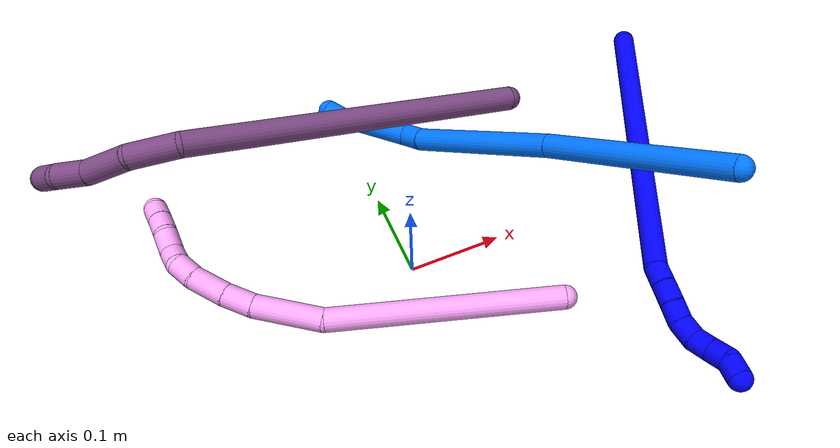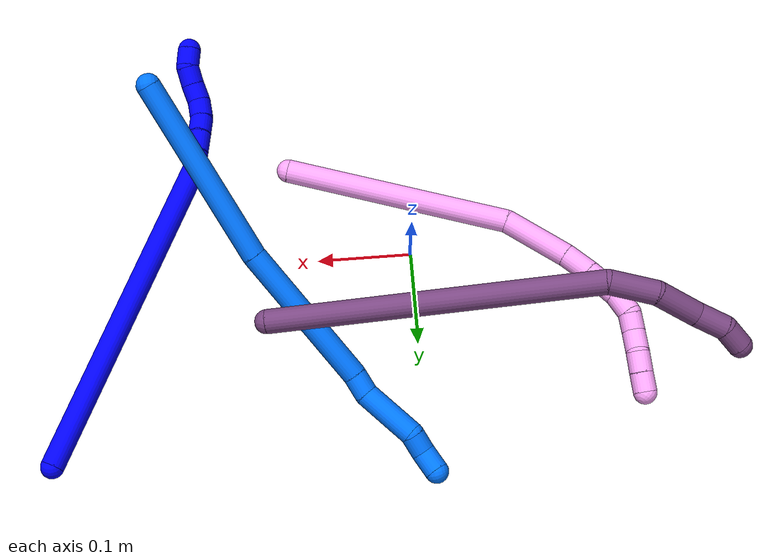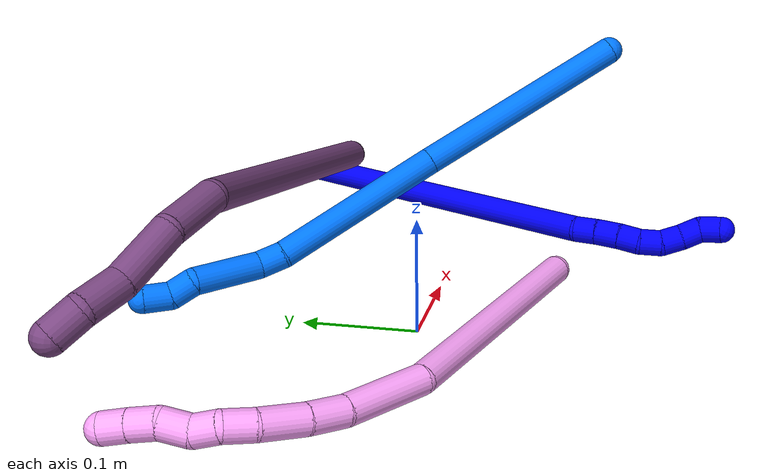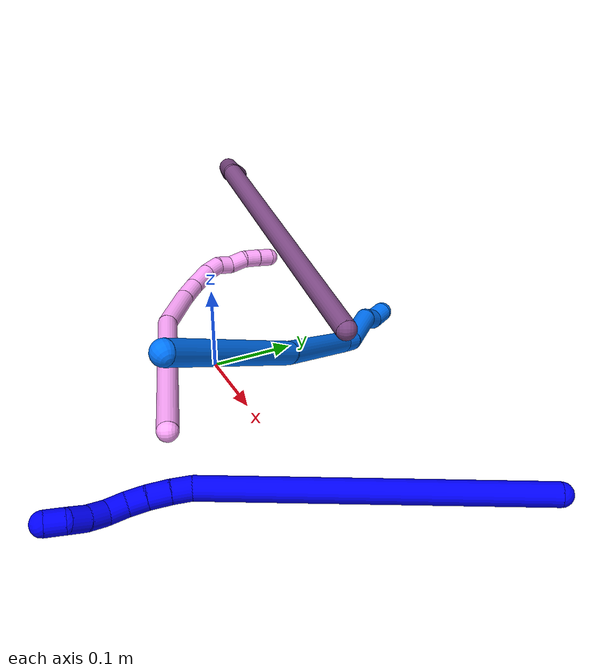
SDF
<sdf version="1.7">
 <world name="default">
  <model name="1">
   <static>0</static>
   <link name="1">
    <collision name="collision-cylinder-e_1_1_4">
     <pose>0.017924 -0.159601 -0.075649 2.01342 0.101137 0.159657</pose>
     <geometry><cylinder><radius>0.0125</radius><length>0.355057</length></cylinder></geometry>
     <surface>
      <friction><ode><mu>1.16</mu><mu2>1.16</mu2><slip1>0</slip1><slip2>0</slip2></ode></friction>
      <contact><ode><kp>1e+06</kp><kd>1</kd><max_vel>0</max_vel><min_depth>0.001</min_depth></ode></contact>
     </surface>
    </collision>
    <visual name="visual-cylinder-e_1_1_4">
     <pose>0.017924 -0.159601 -0.075649 2.01342 0.101137 0.159657</pose>
     <geometry><cylinder><radius>0.0125</radius><length>0.355057</length></cylinder></geometry>
     <material><ambient>0 0 1 1</ambient></material>
    </visual>
    <collision name="collision-cylinder-e_2_4_5">
     <pose>0.034107 -0.328337 -0.156055 2.05093 -0.167442 -0.274892</pose>
     <geometry><cylinder><radius>0.0125</radius><length>0.020891</length></cylinder></geometry>
     <surface>
      <friction><ode><mu>1.16</mu><mu2>1.16</mu2><slip1>0</slip1><slip2>0</slip2></ode></friction>
      <contact><ode><kp>1e+06</kp><kd>1</kd><max_vel>0</max_vel><min_depth>0.001</min_depth></ode></contact>
     </surface>
    </collision>
    <visual name="visual-cylinder-e_2_4_5">
     <pose>0.034107 -0.328337 -0.156055 2.05093 -0.167442 -0.274892</pose>
     <geometry><cylinder><radius>0.0125</radius><length>0.020891</length></cylinder></geometry>
     <material><ambient>0 0 1 1</ambient></material>
    </visual>
    <collision name="collision-cylinder-e_3_5_6">
     <pose>0.030085 -0.347567 -0.165247 1.98472 -0.204048 -0.311065</pose>
     <geometry><cylinder><radius>0.0125</radius><length>0.022521</length></cylinder></geometry>
     <surface>
      <friction><ode><mu>1.16</mu><mu2>1.16</mu2><slip1>0</slip1><slip2>0</slip2></ode></friction>
      <contact><ode><kp>1e+06</kp><kd>1</kd><max_vel>0</max_vel><min_depth>0.001</min_depth></ode></contact>
     </surface>
    </collision>
    <visual name="visual-cylinder-e_3_5_6">
     <pose>0.030085 -0.347567 -0.165247 1.98472 -0.204048 -0.311065</pose>
     <geometry><cylinder><radius>0.0125</radius><length>0.022521</length></cylinder></geometry>
     <material><ambient>0 0 1 1</ambient></material>
    </visual>
    <collision name="collision-cylinder-e_4_6_7">
     <pose>0.025389 -0.366908 -0.172884 1.90421 -0.24194 -0.338239</pose>
     <geometry><cylinder><radius>0.0125</radius><length>0.020154</length></cylinder></geometry>
     <surface>
      <friction><ode><mu>1.16</mu><mu2>1.16</mu2><slip1>0</slip1><slip2>0</slip2></ode></friction>
      <contact><ode><kp>1e+06</kp><kd>1</kd><max_vel>0</max_vel><min_depth>0.001</min_depth></ode></contact>
     </surface>
    </collision>
    <visual name="visual-cylinder-e_4_6_7">
     <pose>0.025389 -0.366908 -0.172884 1.90421 -0.24194 -0.338239</pose>
     <geometry><cylinder><radius>0.0125</radius><length>0.020154</length></cylinder></geometry>
     <material><ambient>0 0 1 1</ambient></material>
    </visual>
    <collision name="collision-cylinder-e_5_7_8">
     <pose>0.018314 -0.384344 -0.18056 2.07064 -0.46309 -0.75652</pose>
     <geometry><cylinder><radius>0.0125</radius><length>0.020864</length></cylinder></geometry>
     <surface>
      <friction><ode><mu>1.16</mu><mu2>1.16</mu2><slip1>0</slip1><slip2>0</slip2></ode></friction>
      <contact><ode><kp>1e+06</kp><kd>1</kd><max_vel>0</max_vel><min_depth>0.001</min_depth></ode></contact>
     </surface>
    </collision>
    <visual name="visual-cylinder-e_5_7_8">
     <pose>0.018314 -0.384344 -0.18056 2.07064 -0.46309 -0.75652</pose>
     <geometry><cylinder><radius>0.0125</radius><length>0.020864</length></cylinder></geometry>
     <material><ambient>0 0 1 1</ambient></material>
    </visual>
    <collision name="collision-cylinder-e_6_8_9">
     <pose>0.008273 -0.397789 -0.191763 2.47877 -0.562344 -1.39656</pose>
     <geometry><cylinder><radius>0.0125</radius><length>0.020184</length></cylinder></geometry>
     <surface>
      <friction><ode><mu>1.16</mu><mu2>1.16</mu2><slip1>0</slip1><slip2>0</slip2></ode></friction>
      <contact><ode><kp>1e+06</kp><kd>1</kd><max_vel>0</max_vel><min_depth>0.001</min_depth></ode></contact>
     </surface>
    </collision>
    <visual name="visual-cylinder-e_6_8_9">
     <pose>0.008273 -0.397789 -0.191763 2.47877 -0.562344 -1.39656</pose>
     <geometry><cylinder><radius>0.0125</radius><length>0.020184</length></cylinder></geometry>
     <material><ambient>0 0 1 1</ambient></material>
    </visual>
    <collision name="collision-cylinder-e_7_9_10">
     <pose>-0.001484 -0.407873 -0.206247 2.58448 -0.446725 -1.34247</pose>
     <geometry><cylinder><radius>0.0125</radius><length>0.020259</length></cylinder></geometry>
     <surface>
      <friction><ode><mu>1.16</mu><mu2>1.16</mu2><slip1>0</slip1><slip2>0</slip2></ode></friction>
      <contact><ode><kp>1e+06</kp><kd>1</kd><max_vel>0</max_vel><min_depth>0.001</min_depth></ode></contact>
     </surface>
    </collision>
    <visual name="visual-cylinder-e_7_9_10">
     <pose>-0.001484 -0.407873 -0.206247 2.58448 -0.446725 -1.34247</pose>
     <geometry><cylinder><radius>0.0125</radius><length>0.020259</length></cylinder></geometry>
     <material><ambient>0 0 1 1</ambient></material>
    </visual>
    <collision name="collision-cylinder-e_8_10_2">
     <pose>-0.007746 -0.420894 -0.219484 2.16067 -0.189071 -0.351475</pose>
     <geometry><cylinder><radius>0.0125</radius><length>0.020069</length></cylinder></geometry>
     <surface>
      <friction><ode><mu>1.16</mu><mu2>1.16</mu2><slip1>0</slip1><slip2>0</slip2></ode></friction>
      <contact><ode><kp>1e+06</kp><kd>1</kd><max_vel>0</max_vel><min_depth>0.001</min_depth></ode></contact>
     </surface>
    </collision>
    <visual name="visual-cylinder-e_8_10_2">
     <pose>-0.007746 -0.420894 -0.219484 2.16067 -0.189071 -0.351475</pose>
     <geometry><cylinder><radius>0.0125</radius><length>0.020069</length></cylinder></geometry>
     <material><ambient>0 0 1 1</ambient></material>
    </visual>
    <collision name="collision-sphere-2">
     <pose>-0.009632 -0.429084 -0.224966 0 -0 0</pose>
     <geometry><sphere><radius>0.0125</radius></sphere></geometry>
     <surface>
      <friction><ode><mu>1.16</mu><mu2>1.16</mu2><slip1>0</slip1><slip2>0</slip2></ode></friction>
      <contact><ode><kp>1e+06</kp><kd>1</kd><max_vel>0</max_vel><min_depth>0.001</min_depth></ode></contact>
     </surface>
    </collision>
    <visual name="visual-sphere-2">
     <pose>-0.009632 -0.429084 -0.224966 0 -0 0</pose>
     <geometry><sphere><radius>0.0125</radius></sphere></geometry>
     <material><ambient>0 0 1 1</ambient></material>
    </visual>
    <collision name="collision-sphere-10">
     <pose>-0.00586 -0.412704 -0.214001 0 -0 0</pose>
     <geometry><sphere><radius>0.0125</radius></sphere></geometry>
     <surface>
      <friction><ode><mu>1.16</mu><mu2>1.16</mu2><slip1>0</slip1><slip2>0</slip2></ode></friction>
      <contact><ode><kp>1e+06</kp><kd>1</kd><max_vel>0</max_vel><min_depth>0.001</min_depth></ode></contact>
     </surface>
    </collision>
    <visual name="visual-sphere-10">
     <pose>-0.00586 -0.412704 -0.214001 0 -0 0</pose>
     <geometry><sphere><radius>0.0125</radius></sphere></geometry>
     <material><ambient>0 0 1 1</ambient></material>
    </visual>
    <collision name="collision-sphere-9">
     <pose>0.002893 -0.403043 -0.198493 0 -0 0</pose>
     <geometry><sphere><radius>0.0125</radius></sphere></geometry>
     <surface>
      <friction><ode><mu>1.16</mu><mu2>1.16</mu2><slip1>0</slip1><slip2>0</slip2></ode></friction>
      <contact><ode><kp>1e+06</kp><kd>1</kd><max_vel>0</max_vel><min_depth>0.001</min_depth></ode></contact>
     </surface>
    </collision>
    <visual name="visual-sphere-9">
     <pose>0.002893 -0.403043 -0.198493 0 -0 0</pose>
     <geometry><sphere><radius>0.0125</radius></sphere></geometry>
     <material><ambient>0 0 1 1</ambient></material>
    </visual>
    <collision name="collision-sphere-4">
     <pose>0.035848 -0.319202 -0.151297 0 -0 0</pose>
     <geometry><sphere><radius>0.0125</radius></sphere></geometry>
     <surface>
      <friction><ode><mu>1.16</mu><mu2>1.16</mu2><slip1>0</slip1><slip2>0</slip2></ode></friction>
      <contact><ode><kp>1e+06</kp><kd>1</kd><max_vel>0</max_vel><min_depth>0.001</min_depth></ode></contact>
     </surface>
    </collision>
    <visual name="visual-sphere-4">
     <pose>0.035848 -0.319202 -0.151297 0 -0 0</pose>
     <geometry><sphere><radius>0.0125</radius></sphere></geometry>
     <material><ambient>0 0 1 1</ambient></material>
    </visual>
    <collision name="collision-sphere-1">
     <geometry><sphere><radius>0.0125</radius></sphere></geometry>
     <surface>
      <friction><ode><mu>1.16</mu><mu2>1.16</mu2><slip1>0</slip1><slip2>0</slip2></ode></friction>
      <contact><ode><kp>1e+06</kp><kd>1</kd><max_vel>0</max_vel><min_depth>0.001</min_depth></ode></contact>
     </surface>
    </collision>
    <visual name="visual-sphere-1">
     <geometry><sphere><radius>0.0125</radius></sphere></geometry>
     <material><ambient>0 0 1 1</ambient></material>
    </visual>
    <collision name="collision-sphere-8">
     <pose>0.013654 -0.392536 -0.185033 0 -0 0</pose>
     <geometry><sphere><radius>0.0125</radius></sphere></geometry>
     <surface>
      <friction><ode><mu>1.16</mu><mu2>1.16</mu2><slip1>0</slip1><slip2>0</slip2></ode></friction>
      <contact><ode><kp>1e+06</kp><kd>1</kd><max_vel>0</max_vel><min_depth>0.001</min_depth></ode></contact>
     </surface>
    </collision>
    <visual name="visual-sphere-8">
     <pose>0.013654 -0.392536 -0.185033 0 -0 0</pose>
     <geometry><sphere><radius>0.0125</radius></sphere></geometry>
     <material><ambient>0 0 1 1</ambient></material>
    </visual>
    <collision name="collision-sphere-5">
     <pose>0.032367 -0.337472 -0.160812 0 -0 0</pose>
     <geometry><sphere><radius>0.0125</radius></sphere></geometry>
     <surface>
      <friction><ode><mu>1.16</mu><mu2>1.16</mu2><slip1>0</slip1><slip2>0</slip2></ode></friction>
      <contact><ode><kp>1e+06</kp><kd>1</kd><max_vel>0</max_vel><min_depth>0.001</min_depth></ode></contact>
     </surface>
    </collision>
    <visual name="visual-sphere-5">
     <pose>0.032367 -0.337472 -0.160812 0 -0 0</pose>
     <geometry><sphere><radius>0.0125</radius></sphere></geometry>
     <material><ambient>0 0 1 1</ambient></material>
    </visual>
    <collision name="collision-sphere-6">
     <pose>0.027803 -0.357663 -0.169682 0 -0 0</pose>
     <geometry><sphere><radius>0.0125</radius></sphere></geometry>
     <surface>
      <friction><ode><mu>1.16</mu><mu2>1.16</mu2><slip1>0</slip1><slip2>0</slip2></ode></friction>
      <contact><ode><kp>1e+06</kp><kd>1</kd><max_vel>0</max_vel><min_depth>0.001</min_depth></ode></contact>
     </surface>
    </collision>
    <visual name="visual-sphere-6">
     <pose>0.027803 -0.357663 -0.169682 0 -0 0</pose>
     <geometry><sphere><radius>0.0125</radius></sphere></geometry>
     <material><ambient>0 0 1 1</ambient></material>
    </visual>
    <collision name="collision-sphere-7">
     <pose>0.022974 -0.376152 -0.176086 0 -0 0</pose>
     <geometry><sphere><radius>0.0125</radius></sphere></geometry>
     <surface>
      <friction><ode><mu>1.16</mu><mu2>1.16</mu2><slip1>0</slip1><slip2>0</slip2></ode></friction>
      <contact><ode><kp>1e+06</kp><kd>1</kd><max_vel>0</max_vel><min_depth>0.001</min_depth></ode></contact>
     </surface>
    </collision>
    <visual name="visual-sphere-7">
     <pose>0.022974 -0.376152 -0.176086 0 -0 0</pose>
     <geometry><sphere><radius>0.0125</radius></sphere></geometry>
     <material><ambient>0 0 1 1</ambient></material>
    </visual>
    <inertial>
     <pose>0.017259 -0.223014 -0.107093 0 -0 0</pose>
     <mass>0.5</mass>
     <inertia>
      <ixx>0.004271</ixx>
      <ixy>0</ixy>
      <ixz>0</ixz>
      <iyy>-0.000978</iyy>
      <iyz>0</iyz>
      <izz>0.002982</izz>
     </inertia>
    </inertial>
   </link>
   <pose>0.388076 0.206232 0.011498 2.69488 -0.195207 2.77231</pose>
  </model>
  <model name="4">
   <static>0</static>
   <link name="4">
    <collision name="collision-cylinder-e_1_1_4">
     <pose>-0.091717 0.075022 -0.028552 -1.93445 -0.851851 1.16412</pose>
     <geometry><cylinder><radius>0.0125</radius><length>0.243766</length></cylinder></geometry>
     <surface>
      <friction><ode><mu>1.16</mu><mu2>1.16</mu2><slip1>0</slip1><slip2>0</slip2></ode></friction>
      <contact><ode><kp>1e+06</kp><kd>1</kd><max_vel>0</max_vel><min_depth>0.001</min_depth></ode></contact>
     </surface>
    </collision>
    <visual name="visual-cylinder-e_1_1_4">
     <pose>-0.091717 0.075022 -0.028552 -1.93445 -0.851851 1.16412</pose>
     <geometry><cylinder><radius>0.0125</radius><length>0.243766</length></cylinder></geometry>
     <material><ambient>1 0.65098 0.996078 1</ambient></material>
    </visual>
    <collision name="collision-cylinder-e_2_4_5">
     <pose>-0.211495 0.174098 -0.053996 -1.44233 -0.858024 0.764697</pose>
     <geometry><cylinder><radius>0.0125</radius><length>0.07418</length></cylinder></geometry>
     <surface>
      <friction><ode><mu>1.16</mu><mu2>1.16</mu2><slip1>0</slip1><slip2>0</slip2></ode></friction>
      <contact><ode><kp>1e+06</kp><kd>1</kd><max_vel>0</max_vel><min_depth>0.001</min_depth></ode></contact>
     </surface>
    </collision>
    <visual name="visual-cylinder-e_2_4_5">
     <pose>-0.211495 0.174098 -0.053996 -1.44233 -0.858024 0.764697</pose>
     <geometry><cylinder><radius>0.0125</radius><length>0.07418</length></cylinder></geometry>
     <material><ambient>1 0.65098 0.996078 1</ambient></material>
    </visual>
    <collision name="collision-cylinder-e_3_5_6">
     <pose>-0.252053 0.207229 -0.047215 -1.18619 -0.906194 0.634214</pose>
     <geometry><cylinder><radius>0.0125</radius><length>0.031753</length></cylinder></geometry>
     <surface>
      <friction><ode><mu>1.16</mu><mu2>1.16</mu2><slip1>0</slip1><slip2>0</slip2></ode></friction>
      <contact><ode><kp>1e+06</kp><kd>1</kd><max_vel>0</max_vel><min_depth>0.001</min_depth></ode></contact>
     </surface>
    </collision>
    <visual name="visual-cylinder-e_3_5_6">
     <pose>-0.252053 0.207229 -0.047215 -1.18619 -0.906194 0.634214</pose>
     <geometry><cylinder><radius>0.0125</radius><length>0.031753</length></cylinder></geometry>
     <material><ambient>1 0.65098 0.996078 1</ambient></material>
    </visual>
    <collision name="collision-cylinder-e_4_6_7">
     <pose>-0.279636 0.226404 -0.037139 -1.00575 -0.900569 0.519761</pose>
     <geometry><cylinder><radius>0.0125</radius><length>0.0385</length></cylinder></geometry>
     <surface>
      <friction><ode><mu>1.16</mu><mu2>1.16</mu2><slip1>0</slip1><slip2>0</slip2></ode></friction>
      <contact><ode><kp>1e+06</kp><kd>1</kd><max_vel>0</max_vel><min_depth>0.001</min_depth></ode></contact>
     </surface>
    </collision>
    <visual name="visual-cylinder-e_4_6_7">
     <pose>-0.279636 0.226404 -0.037139 -1.00575 -0.900569 0.519761</pose>
     <geometry><cylinder><radius>0.0125</radius><length>0.0385</length></cylinder></geometry>
     <material><ambient>1 0.65098 0.996078 1</ambient></material>
    </visual>
    <collision name="collision-cylinder-e_5_7_8">
     <pose>-0.303027 0.242753 -0.024388 -0.777605 -0.750311 0.319894</pose>
     <geometry><cylinder><radius>0.0125</radius><length>0.024357</length></cylinder></geometry>
     <surface>
      <friction><ode><mu>1.16</mu><mu2>1.16</mu2><slip1>0</slip1><slip2>0</slip2></ode></friction>
      <contact><ode><kp>1e+06</kp><kd>1</kd><max_vel>0</max_vel><min_depth>0.001</min_depth></ode></contact>
     </surface>
    </collision>
    <visual name="visual-cylinder-e_5_7_8">
     <pose>-0.303027 0.242753 -0.024388 -0.777605 -0.750311 0.319894</pose>
     <geometry><cylinder><radius>0.0125</radius><length>0.024357</length></cylinder></geometry>
     <material><ambient>1 0.65098 0.996078 1</ambient></material>
    </visual>
    <collision name="collision-cylinder-e_6_8_9">
     <pose>-0.314064 0.255449 -0.010525 -0.708946 -0.2694 0.10023</pose>
     <geometry><cylinder><radius>0.0125</radius><length>0.020541</length></cylinder></geometry>
     <surface>
      <friction><ode><mu>1.16</mu><mu2>1.16</mu2><slip1>0</slip1><slip2>0</slip2></ode></friction>
      <contact><ode><kp>1e+06</kp><kd>1</kd><max_vel>0</max_vel><min_depth>0.001</min_depth></ode></contact>
     </surface>
    </collision>
    <visual name="visual-cylinder-e_6_8_9">
     <pose>-0.314064 0.255449 -0.010525 -0.708946 -0.2694 0.10023</pose>
     <geometry><cylinder><radius>0.0125</radius><length>0.020541</length></cylinder></geometry>
     <material><ambient>1 0.65098 0.996078 1</ambient></material>
    </visual>
    <collision name="collision-cylinder-e_7_9_10">
     <pose>-0.322522 0.265164 0.006978 -0.316373 -0.498715 0.081201</pose>
     <geometry><cylinder><radius>0.0125</radius><length>0.023936</length></cylinder></geometry>
     <surface>
      <friction><ode><mu>1.16</mu><mu2>1.16</mu2><slip1>0</slip1><slip2>0</slip2></ode></friction>
      <contact><ode><kp>1e+06</kp><kd>1</kd><max_vel>0</max_vel><min_depth>0.001</min_depth></ode></contact>
     </surface>
    </collision>
    <visual name="visual-cylinder-e_7_9_10">
     <pose>-0.322522 0.265164 0.006978 -0.316373 -0.498715 0.081201</pose>
     <geometry><cylinder><radius>0.0125</radius><length>0.023936</length></cylinder></geometry>
     <material><ambient>1 0.65098 0.996078 1</ambient></material>
    </visual>
    <collision name="collision-cylinder-e_8_10_11">
     <pose>-0.331457 0.274528 0.025655 -0.611657 -0.293752 0.093352</pose>
     <geometry><cylinder><radius>0.0125</radius><length>0.022175</length></cylinder></geometry>
     <surface>
      <friction><ode><mu>1.16</mu><mu2>1.16</mu2><slip1>0</slip1><slip2>0</slip2></ode></friction>
      <contact><ode><kp>1e+06</kp><kd>1</kd><max_vel>0</max_vel><min_depth>0.001</min_depth></ode></contact>
     </surface>
    </collision>
    <visual name="visual-cylinder-e_8_10_11">
     <pose>-0.331457 0.274528 0.025655 -0.611657 -0.293752 0.093352</pose>
     <geometry><cylinder><radius>0.0125</radius><length>0.022175</length></cylinder></geometry>
     <material><ambient>1 0.65098 0.996078 1</ambient></material>
    </visual>
    <collision name="collision-cylinder-e_9_11_2">
     <pose>-0.337589 0.286704 0.042252 -0.655586 -0.284915 0.097472</pose>
     <geometry><cylinder><radius>0.0125</radius><length>0.02079</length></cylinder></geometry>
     <surface>
      <friction><ode><mu>1.16</mu><mu2>1.16</mu2><slip1>0</slip1><slip2>0</slip2></ode></friction>
      <contact><ode><kp>1e+06</kp><kd>1</kd><max_vel>0</max_vel><min_depth>0.001</min_depth></ode></contact>
     </surface>
    </collision>
    <visual name="visual-cylinder-e_9_11_2">
     <pose>-0.337589 0.286704 0.042252 -0.655586 -0.284915 0.097472</pose>
     <geometry><cylinder><radius>0.0125</radius><length>0.02079</length></cylinder></geometry>
     <material><ambient>1 0.65098 0.996078 1</ambient></material>
    </visual>
    <collision name="collision-sphere-2">
     <pose>-0.340511 0.292785 0.05016 0 -0 0</pose>
     <geometry><sphere><radius>0.0125</radius></sphere></geometry>
     <surface>
      <friction><ode><mu>1.16</mu><mu2>1.16</mu2><slip1>0</slip1><slip2>0</slip2></ode></friction>
      <contact><ode><kp>1e+06</kp><kd>1</kd><max_vel>0</max_vel><min_depth>0.001</min_depth></ode></contact>
     </surface>
    </collision>
    <visual name="visual-sphere-2">
     <pose>-0.340511 0.292785 0.05016 0 -0 0</pose>
     <geometry><sphere><radius>0.0125</radius></sphere></geometry>
     <material><ambient>1 0.65098 0.996078 1</ambient></material>
    </visual>
    <collision name="collision-sphere-11">
     <pose>-0.334667 0.280622 0.034344 0 -0 0</pose>
     <geometry><sphere><radius>0.0125</radius></sphere></geometry>
     <surface>
      <friction><ode><mu>1.16</mu><mu2>1.16</mu2><slip1>0</slip1><slip2>0</slip2></ode></friction>
      <contact><ode><kp>1e+06</kp><kd>1</kd><max_vel>0</max_vel><min_depth>0.001</min_depth></ode></contact>
     </surface>
    </collision>
    <visual name="visual-sphere-11">
     <pose>-0.334667 0.280622 0.034344 0 -0 0</pose>
     <geometry><sphere><radius>0.0125</radius></sphere></geometry>
     <material><ambient>1 0.65098 0.996078 1</ambient></material>
    </visual>
    <collision name="collision-sphere-10">
     <pose>-0.328247 0.268434 0.016967 0 -0 0</pose>
     <geometry><sphere><radius>0.0125</radius></sphere></geometry>
     <surface>
      <friction><ode><mu>1.16</mu><mu2>1.16</mu2><slip1>0</slip1><slip2>0</slip2></ode></friction>
      <contact><ode><kp>1e+06</kp><kd>1</kd><max_vel>0</max_vel><min_depth>0.001</min_depth></ode></contact>
     </surface>
    </collision>
    <visual name="visual-sphere-10">
     <pose>-0.328247 0.268434 0.016967 0 -0 0</pose>
     <geometry><sphere><radius>0.0125</radius></sphere></geometry>
     <material><ambient>1 0.65098 0.996078 1</ambient></material>
    </visual>
    <collision name="collision-sphere-9">
     <pose>-0.316798 0.261894 -0.003011 0 -0 0</pose>
     <geometry><sphere><radius>0.0125</radius></sphere></geometry>
     <surface>
      <friction><ode><mu>1.16</mu><mu2>1.16</mu2><slip1>0</slip1><slip2>0</slip2></ode></friction>
      <contact><ode><kp>1e+06</kp><kd>1</kd><max_vel>0</max_vel><min_depth>0.001</min_depth></ode></contact>
     </surface>
    </collision>
    <visual name="visual-sphere-9">
     <pose>-0.316798 0.261894 -0.003011 0 -0 0</pose>
     <geometry><sphere><radius>0.0125</radius></sphere></geometry>
     <material><ambient>1 0.65098 0.996078 1</ambient></material>
    </visual>
    <collision name="collision-sphere-4">
     <pose>-0.183434 0.150043 -0.057104 0 -0 0</pose>
     <geometry><sphere><radius>0.0125</radius></sphere></geometry>
     <surface>
      <friction><ode><mu>1.16</mu><mu2>1.16</mu2><slip1>0</slip1><slip2>0</slip2></ode></friction>
      <contact><ode><kp>1e+06</kp><kd>1</kd><max_vel>0</max_vel><min_depth>0.001</min_depth></ode></contact>
     </surface>
    </collision>
    <visual name="visual-sphere-4">
     <pose>-0.183434 0.150043 -0.057104 0 -0 0</pose>
     <geometry><sphere><radius>0.0125</radius></sphere></geometry>
     <material><ambient>1 0.65098 0.996078 1</ambient></material>
    </visual>
    <collision name="collision-sphere-1">
     <geometry><sphere><radius>0.0125</radius></sphere></geometry>
     <surface>
      <friction><ode><mu>1.16</mu><mu2>1.16</mu2><slip1>0</slip1><slip2>0</slip2></ode></friction>
      <contact><ode><kp>1e+06</kp><kd>1</kd><max_vel>0</max_vel><min_depth>0.001</min_depth></ode></contact>
     </surface>
    </collision>
    <visual name="visual-sphere-1">
     <geometry><sphere><radius>0.0125</radius></sphere></geometry>
     <material><ambient>1 0.65098 0.996078 1</ambient></material>
    </visual>
    <collision name="collision-sphere-8">
     <pose>-0.311331 0.249003 -0.01804 0 -0 0</pose>
     <geometry><sphere><radius>0.0125</radius></sphere></geometry>
     <surface>
      <friction><ode><mu>1.16</mu><mu2>1.16</mu2><slip1>0</slip1><slip2>0</slip2></ode></friction>
      <contact><ode><kp>1e+06</kp><kd>1</kd><max_vel>0</max_vel><min_depth>0.001</min_depth></ode></contact>
     </surface>
    </collision>
    <visual name="visual-sphere-8">
     <pose>-0.311331 0.249003 -0.01804 0 -0 0</pose>
     <geometry><sphere><radius>0.0125</radius></sphere></geometry>
     <material><ambient>1 0.65098 0.996078 1</ambient></material>
    </visual>
    <collision name="collision-sphere-5">
     <pose>-0.239555 0.198152 -0.050889 0 -0 0</pose>
     <geometry><sphere><radius>0.0125</radius></sphere></geometry>
     <surface>
      <friction><ode><mu>1.16</mu><mu2>1.16</mu2><slip1>0</slip1><slip2>0</slip2></ode></friction>
      <contact><ode><kp>1e+06</kp><kd>1</kd><max_vel>0</max_vel><min_depth>0.001</min_depth></ode></contact>
     </surface>
    </collision>
    <visual name="visual-sphere-5">
     <pose>-0.239555 0.198152 -0.050889 0 -0 0</pose>
     <geometry><sphere><radius>0.0125</radius></sphere></geometry>
     <material><ambient>1 0.65098 0.996078 1</ambient></material>
    </visual>
    <collision name="collision-sphere-6">
     <pose>-0.26455 0.216306 -0.043542 0 -0 0</pose>
     <geometry><sphere><radius>0.0125</radius></sphere></geometry>
     <surface>
      <friction><ode><mu>1.16</mu><mu2>1.16</mu2><slip1>0</slip1><slip2>0</slip2></ode></friction>
      <contact><ode><kp>1e+06</kp><kd>1</kd><max_vel>0</max_vel><min_depth>0.001</min_depth></ode></contact>
     </surface>
    </collision>
    <visual name="visual-sphere-6">
     <pose>-0.26455 0.216306 -0.043542 0 -0 0</pose>
     <geometry><sphere><radius>0.0125</radius></sphere></geometry>
     <material><ambient>1 0.65098 0.996078 1</ambient></material>
    </visual>
    <collision name="collision-sphere-7">
     <pose>-0.294722 0.236503 -0.030736 0 -0 0</pose>
     <geometry><sphere><radius>0.0125</radius></sphere></geometry>
     <surface>
      <friction><ode><mu>1.16</mu><mu2>1.16</mu2><slip1>0</slip1><slip2>0</slip2></ode></friction>
      <contact><ode><kp>1e+06</kp><kd>1</kd><max_vel>0</max_vel><min_depth>0.001</min_depth></ode></contact>
     </surface>
    </collision>
    <visual name="visual-sphere-7">
     <pose>-0.294722 0.236503 -0.030736 0 -0 0</pose>
     <geometry><sphere><radius>0.0125</radius></sphere></geometry>
     <material><ambient>1 0.65098 0.996078 1</ambient></material>
    </visual>
    <inertial>
     <pose>-0.185473 0.152109 -0.026181 0 -0 0</pose>
     <mass>0.5</mass>
     <inertia>
      <ixx>0.001078</ixx>
      <ixy>0</ixy>
      <ixz>0</ixz>
      <iyy>0.001433</iyy>
      <iyz>0</iyz>
      <izz>0.000176</izz>
     </inertia>
    </inertial>
   </link>
   <pose>0.124974 -0.10189 0.01458 -1.42362 0.694418 -0.4574</pose>
  </model>
  <model name="14">
   <static>0</static>
   <link name="14">
    <collision name="collision-cylinder-e_1_1_4">
     <pose>-0.029691 0.094093 0.023426 -1.32679 -0.297142 0.232899</pose>
     <geometry><cylinder><radius>0.0125</radius><length>0.202819</length></cylinder></geometry>
     <surface>
      <friction><ode><mu>1.16</mu><mu2>1.16</mu2><slip1>0</slip1><slip2>0</slip2></ode></friction>
      <contact><ode><kp>1e+06</kp><kd>1</kd><max_vel>0</max_vel><min_depth>0.001</min_depth></ode></contact>
     </surface>
    </collision>
    <visual name="visual-cylinder-e_1_1_4">
     <pose>-0.029691 0.094093 0.023426 -1.32679 -0.297142 0.232899</pose>
     <geometry><cylinder><radius>0.0125</radius><length>0.202819</length></cylinder></geometry>
     <material><ambient>0 0.462745 1 1</ambient></material>
    </visual>
    <collision name="collision-cylinder-e_2_4_5">
     <pose>-0.083958 0.259804 0.076766 -1.17514 -0.306644 0.205132</pose>
     <geometry><cylinder><radius>0.0125</radius><length>0.162825</length></cylinder></geometry>
     <surface>
      <friction><ode><mu>1.16</mu><mu2>1.16</mu2><slip1>0</slip1><slip2>0</slip2></ode></friction>
      <contact><ode><kp>1e+06</kp><kd>1</kd><max_vel>0</max_vel><min_depth>0.001</min_depth></ode></contact>
     </surface>
    </collision>
    <visual name="visual-cylinder-e_2_4_5">
     <pose>-0.083958 0.259804 0.076766 -1.17514 -0.306644 0.205132</pose>
     <geometry><cylinder><radius>0.0125</radius><length>0.162825</length></cylinder></geometry>
     <material><ambient>0 0.462745 1 1</ambient></material>
    </visual>
    <collision name="collision-cylinder-e_3_5_6">
     <pose>-0.110272 0.342764 0.109944 -1.29057 -0.146279 0.110202</pose>
     <geometry><cylinder><radius>0.0125</radius><length>0.023859</length></cylinder></geometry>
     <surface>
      <friction><ode><mu>1.16</mu><mu2>1.16</mu2><slip1>0</slip1><slip2>0</slip2></ode></friction>
      <contact><ode><kp>1e+06</kp><kd>1</kd><max_vel>0</max_vel><min_depth>0.001</min_depth></ode></contact>
     </surface>
    </collision>
    <visual name="visual-cylinder-e_3_5_6">
     <pose>-0.110272 0.342764 0.109944 -1.29057 -0.146279 0.110202</pose>
     <geometry><cylinder><radius>0.0125</radius><length>0.023859</length></cylinder></geometry>
     <material><ambient>0 0.462745 1 1</ambient></material>
    </visual>
    <collision name="collision-cylinder-e_4_6_7">
     <pose>-0.111339 0.379516 0.13171 -0.941444 0.021362 -0.010871</pose>
     <geometry><cylinder><radius>0.0125</radius><length>0.062879</length></cylinder></geometry>
     <surface>
      <friction><ode><mu>1.16</mu><mu2>1.16</mu2><slip1>0</slip1><slip2>0</slip2></ode></friction>
      <contact><ode><kp>1e+06</kp><kd>1</kd><max_vel>0</max_vel><min_depth>0.001</min_depth></ode></contact>
     </surface>
    </collision>
    <visual name="visual-cylinder-e_4_6_7">
     <pose>-0.111339 0.379516 0.13171 -0.941444 0.021362 -0.010871</pose>
     <geometry><cylinder><radius>0.0125</radius><length>0.062879</length></cylinder></geometry>
     <material><ambient>0 0.462745 1 1</ambient></material>
    </visual>
    <collision name="collision-cylinder-e_5_7_8">
     <pose>-0.114102 0.415395 0.152765 -1.3316 -0.30848 0.24303</pose>
     <geometry><cylinder><radius>0.0125</radius><length>0.022619</length></cylinder></geometry>
     <surface>
      <friction><ode><mu>1.16</mu><mu2>1.16</mu2><slip1>0</slip1><slip2>0</slip2></ode></friction>
      <contact><ode><kp>1e+06</kp><kd>1</kd><max_vel>0</max_vel><min_depth>0.001</min_depth></ode></contact>
     </surface>
    </collision>
    <visual name="visual-cylinder-e_5_7_8">
     <pose>-0.114102 0.415395 0.152765 -1.3316 -0.30848 0.24303</pose>
     <geometry><cylinder><radius>0.0125</radius><length>0.022619</length></cylinder></geometry>
     <material><ambient>0 0.462745 1 1</ambient></material>
    </visual>
    <collision name="collision-cylinder-e_6_8_2">
     <pose>-0.115821 0.437219 0.160255 -1.16064 0.137538 -0.090255</pose>
     <geometry><cylinder><radius>0.0125</radius><length>0.025</length></cylinder></geometry>
     <surface>
      <friction><ode><mu>1.16</mu><mu2>1.16</mu2><slip1>0</slip1><slip2>0</slip2></ode></friction>
      <contact><ode><kp>1e+06</kp><kd>1</kd><max_vel>0</max_vel><min_depth>0.001</min_depth></ode></contact>
     </surface>
    </collision>
    <visual name="visual-cylinder-e_6_8_2">
     <pose>-0.115821 0.437219 0.160255 -1.16064 0.137538 -0.090255</pose>
     <geometry><cylinder><radius>0.0125</radius><length>0.025</length></cylinder></geometry>
     <material><ambient>0 0.462745 1 1</ambient></material>
    </visual>
    <collision name="collision-sphere-2">
     <pose>-0.114108 0.448574 0.165192 0 -0 0</pose>
     <geometry><sphere><radius>0.0125</radius></sphere></geometry>
     <surface>
      <friction><ode><mu>1.16</mu><mu2>1.16</mu2><slip1>0</slip1><slip2>0</slip2></ode></friction>
      <contact><ode><kp>1e+06</kp><kd>1</kd><max_vel>0</max_vel><min_depth>0.001</min_depth></ode></contact>
     </surface>
    </collision>
    <visual name="visual-sphere-2">
     <pose>-0.114108 0.448574 0.165192 0 -0 0</pose>
     <geometry><sphere><radius>0.0125</radius></sphere></geometry>
     <material><ambient>0 0.462745 1 1</ambient></material>
    </visual>
    <collision name="collision-sphere-4">
     <pose>-0.059383 0.188186 0.046853 0 -0 0</pose>
     <geometry><sphere><radius>0.0125</radius></sphere></geometry>
     <surface>
      <friction><ode><mu>1.16</mu><mu2>1.16</mu2><slip1>0</slip1><slip2>0</slip2></ode></friction>
      <contact><ode><kp>1e+06</kp><kd>1</kd><max_vel>0</max_vel><min_depth>0.001</min_depth></ode></contact>
     </surface>
    </collision>
    <visual name="visual-sphere-4">
     <pose>-0.059383 0.188186 0.046853 0 -0 0</pose>
     <geometry><sphere><radius>0.0125</radius></sphere></geometry>
     <material><ambient>0 0.462745 1 1</ambient></material>
    </visual>
    <collision name="collision-sphere-1">
     <geometry><sphere><radius>0.0125</radius></sphere></geometry>
     <surface>
      <friction><ode><mu>1.16</mu><mu2>1.16</mu2><slip1>0</slip1><slip2>0</slip2></ode></friction>
      <contact><ode><kp>1e+06</kp><kd>1</kd><max_vel>0</max_vel><min_depth>0.001</min_depth></ode></contact>
     </surface>
    </collision>
    <visual name="visual-sphere-1">
     <geometry><sphere><radius>0.0125</radius></sphere></geometry>
     <material><ambient>0 0.462745 1 1</ambient></material>
    </visual>
    <collision name="collision-sphere-8">
     <pose>-0.117535 0.425864 0.155318 0 -0 0</pose>
     <geometry><sphere><radius>0.0125</radius></sphere></geometry>
     <surface>
      <friction><ode><mu>1.16</mu><mu2>1.16</mu2><slip1>0</slip1><slip2>0</slip2></ode></friction>
      <contact><ode><kp>1e+06</kp><kd>1</kd><max_vel>0</max_vel><min_depth>0.001</min_depth></ode></contact>
     </surface>
    </collision>
    <visual name="visual-sphere-8">
     <pose>-0.117535 0.425864 0.155318 0 -0 0</pose>
     <geometry><sphere><radius>0.0125</radius></sphere></geometry>
     <material><ambient>0 0.462745 1 1</ambient></material>
    </visual>
    <collision name="collision-sphere-5">
     <pose>-0.108533 0.331423 0.10668 0 -0 0</pose>
     <geometry><sphere><radius>0.0125</radius></sphere></geometry>
     <surface>
      <friction><ode><mu>1.16</mu><mu2>1.16</mu2><slip1>0</slip1><slip2>0</slip2></ode></friction>
      <contact><ode><kp>1e+06</kp><kd>1</kd><max_vel>0</max_vel><min_depth>0.001</min_depth></ode></contact>
     </surface>
    </collision>
    <visual name="visual-sphere-5">
     <pose>-0.108533 0.331423 0.10668 0 -0 0</pose>
     <geometry><sphere><radius>0.0125</radius></sphere></geometry>
     <material><ambient>0 0.462745 1 1</ambient></material>
    </visual>
    <collision name="collision-sphere-6">
     <pose>-0.112011 0.354106 0.113208 0 -0 0</pose>
     <geometry><sphere><radius>0.0125</radius></sphere></geometry>
     <surface>
      <friction><ode><mu>1.16</mu><mu2>1.16</mu2><slip1>0</slip1><slip2>0</slip2></ode></friction>
      <contact><ode><kp>1e+06</kp><kd>1</kd><max_vel>0</max_vel><min_depth>0.001</min_depth></ode></contact>
     </surface>
    </collision>
    <visual name="visual-sphere-6">
     <pose>-0.112011 0.354106 0.113208 0 -0 0</pose>
     <geometry><sphere><radius>0.0125</radius></sphere></geometry>
     <material><ambient>0 0.462745 1 1</ambient></material>
    </visual>
    <collision name="collision-sphere-7">
     <pose>-0.110668 0.404927 0.150212 0 -0 0</pose>
     <geometry><sphere><radius>0.0125</radius></sphere></geometry>
     <surface>
      <friction><ode><mu>1.16</mu><mu2>1.16</mu2><slip1>0</slip1><slip2>0</slip2></ode></friction>
      <contact><ode><kp>1e+06</kp><kd>1</kd><max_vel>0</max_vel><min_depth>0.001</min_depth></ode></contact>
     </surface>
    </collision>
    <visual name="visual-sphere-7">
     <pose>-0.110668 0.404927 0.150212 0 -0 0</pose>
     <geometry><sphere><radius>0.0125</radius></sphere></geometry>
     <material><ambient>0 0.462745 1 1</ambient></material>
    </visual>
    <inertial>
     <pose>-0.069601 0.227508 0.071235 0 -0 0</pose>
     <mass>0.5</mass>
     <inertia>
      <ixx>0.001243</ixx>
      <ixy>0</ixy>
      <ixz>0</ixz>
      <iyy>0.000648</iyy>
      <iyz>0</iyz>
      <izz>-0.00067</izz>
     </inertia>
    </inertial>
   </link>
   <pose>0.25533 -0.133391 0.190327 -0.750433 -1.16715 0.8863</pose>
  </model>
  <model name="20">
   <static>0</static>
   <link name="20">
    <collision name="collision-cylinder-e_1_1_4">
     <pose>-0.158032 -0.018253 -0.06503 2.86795 -1.16689 -2.73034</pose>
     <geometry><cylinder><radius>0.0125</radius><length>0.343723</length></cylinder></geometry>
     <surface>
      <friction><ode><mu>1.16</mu><mu2>1.16</mu2><slip1>0</slip1><slip2>0</slip2></ode></friction>
      <contact><ode><kp>1e+06</kp><kd>1</kd><max_vel>0</max_vel><min_depth>0.001</min_depth></ode></contact>
     </surface>
    </collision>
    <visual name="visual-cylinder-e_1_1_4">
     <pose>-0.158032 -0.018253 -0.06503 2.86795 -1.16689 -2.73034</pose>
     <geometry><cylinder><radius>0.0125</radius><length>0.343723</length></cylinder></geometry>
     <material><ambient>0.478431 0.278431 0.509804 1</ambient></material>
    </visual>
    <collision name="collision-cylinder-e_2_4_5">
     <pose>-0.339701 -0.029748 -0.134229 -2.12356 -1.24672 1.8215</pose>
     <geometry><cylinder><radius>0.0125</radius><length>0.049868</length></cylinder></geometry>
     <surface>
      <friction><ode><mu>1.16</mu><mu2>1.16</mu2><slip1>0</slip1><slip2>0</slip2></ode></friction>
      <contact><ode><kp>1e+06</kp><kd>1</kd><max_vel>0</max_vel><min_depth>0.001</min_depth></ode></contact>
     </surface>
    </collision>
    <visual name="visual-cylinder-e_2_4_5">
     <pose>-0.339701 -0.029748 -0.134229 -2.12356 -1.24672 1.8215</pose>
     <geometry><cylinder><radius>0.0125</radius><length>0.049868</length></cylinder></geometry>
     <material><ambient>0.478431 0.278431 0.509804 1</ambient></material>
    </visual>
    <collision name="collision-cylinder-e_3_5_6">
     <pose>-0.383544 -0.009436 -0.138532 -1.58071 -0.979935 0.988192</pose>
     <geometry><cylinder><radius>0.0125</radius><length>0.048666</length></cylinder></geometry>
     <surface>
      <friction><ode><mu>1.16</mu><mu2>1.16</mu2><slip1>0</slip1><slip2>0</slip2></ode></friction>
      <contact><ode><kp>1e+06</kp><kd>1</kd><max_vel>0</max_vel><min_depth>0.001</min_depth></ode></contact>
     </surface>
    </collision>
    <visual name="visual-cylinder-e_3_5_6">
     <pose>-0.383544 -0.009436 -0.138532 -1.58071 -0.979935 0.988192</pose>
     <geometry><cylinder><radius>0.0125</radius><length>0.048666</length></cylinder></geometry>
     <material><ambient>0.478431 0.278431 0.509804 1</ambient></material>
    </visual>
    <collision name="collision-cylinder-e_4_6_7">
     <pose>-0.419118 0.009852 -0.138054 -1.4644 -1.21182 1.11403</pose>
     <geometry><cylinder><radius>0.0125</radius><length>0.032824</length></cylinder></geometry>
     <surface>
      <friction><ode><mu>1.16</mu><mu2>1.16</mu2><slip1>0</slip1><slip2>0</slip2></ode></friction>
      <contact><ode><kp>1e+06</kp><kd>1</kd><max_vel>0</max_vel><min_depth>0.001</min_depth></ode></contact>
     </surface>
    </collision>
    <visual name="visual-cylinder-e_4_6_7">
     <pose>-0.419118 0.009852 -0.138054 -1.4644 -1.21182 1.11403</pose>
     <geometry><cylinder><radius>0.0125</radius><length>0.032824</length></cylinder></geometry>
     <material><ambient>0.478431 0.278431 0.509804 1</ambient></material>
    </visual>
    <collision name="collision-cylinder-e_5_7_2">
     <pose>-0.443528 0.023249 -0.133608 -1.1069 -0.812374 0.519487</pose>
     <geometry><cylinder><radius>0.0125</radius><length>0.024919</length></cylinder></geometry>
     <surface>
      <friction><ode><mu>1.16</mu><mu2>1.16</mu2><slip1>0</slip1><slip2>0</slip2></ode></friction>
      <contact><ode><kp>1e+06</kp><kd>1</kd><max_vel>0</max_vel><min_depth>0.001</min_depth></ode></contact>
     </surface>
    </collision>
    <visual name="visual-cylinder-e_5_7_2">
     <pose>-0.443528 0.023249 -0.133608 -1.1069 -0.812374 0.519487</pose>
     <geometry><cylinder><radius>0.0125</radius><length>0.024919</length></cylinder></geometry>
     <material><ambient>0.478431 0.278431 0.509804 1</ambient></material>
    </visual>
    <collision name="collision-sphere-2">
     <pose>-0.452573 0.030913 -0.129774 0 -0 0</pose>
     <geometry><sphere><radius>0.0125</radius></sphere></geometry>
     <surface>
      <friction><ode><mu>1.16</mu><mu2>1.16</mu2><slip1>0</slip1><slip2>0</slip2></ode></friction>
      <contact><ode><kp>1e+06</kp><kd>1</kd><max_vel>0</max_vel><min_depth>0.001</min_depth></ode></contact>
     </surface>
    </collision>
    <visual name="visual-sphere-2">
     <pose>-0.452573 0.030913 -0.129774 0 -0 0</pose>
     <geometry><sphere><radius>0.0125</radius></sphere></geometry>
     <material><ambient>0.478431 0.278431 0.509804 1</ambient></material>
    </visual>
    <collision name="collision-sphere-7">
     <pose>-0.434484 0.015585 -0.137442 0 -0 0</pose>
     <geometry><sphere><radius>0.0125</radius></sphere></geometry>
     <surface>
      <friction><ode><mu>1.16</mu><mu2>1.16</mu2><slip1>0</slip1><slip2>0</slip2></ode></friction>
      <contact><ode><kp>1e+06</kp><kd>1</kd><max_vel>0</max_vel><min_depth>0.001</min_depth></ode></contact>
     </surface>
    </collision>
    <visual name="visual-sphere-7">
     <pose>-0.434484 0.015585 -0.137442 0 -0 0</pose>
     <geometry><sphere><radius>0.0125</radius></sphere></geometry>
     <material><ambient>0.478431 0.278431 0.509804 1</ambient></material>
    </visual>
    <collision name="collision-sphere-6">
     <pose>-0.403752 0.004119 -0.138667 0 -0 0</pose>
     <geometry><sphere><radius>0.0125</radius></sphere></geometry>
     <surface>
      <friction><ode><mu>1.16</mu><mu2>1.16</mu2><slip1>0</slip1><slip2>0</slip2></ode></friction>
      <contact><ode><kp>1e+06</kp><kd>1</kd><max_vel>0</max_vel><min_depth>0.001</min_depth></ode></contact>
     </surface>
    </collision>
    <visual name="visual-sphere-6">
     <pose>-0.403752 0.004119 -0.138667 0 -0 0</pose>
     <geometry><sphere><radius>0.0125</radius></sphere></geometry>
     <material><ambient>0.478431 0.278431 0.509804 1</ambient></material>
    </visual>
    <collision name="collision-sphere-5">
     <pose>-0.363337 -0.022991 -0.138398 0 -0 0</pose>
     <geometry><sphere><radius>0.0125</radius></sphere></geometry>
     <surface>
      <friction><ode><mu>1.16</mu><mu2>1.16</mu2><slip1>0</slip1><slip2>0</slip2></ode></friction>
      <contact><ode><kp>1e+06</kp><kd>1</kd><max_vel>0</max_vel><min_depth>0.001</min_depth></ode></contact>
     </surface>
    </collision>
    <visual name="visual-sphere-5">
     <pose>-0.363337 -0.022991 -0.138398 0 -0 0</pose>
     <geometry><sphere><radius>0.0125</radius></sphere></geometry>
     <material><ambient>0.478431 0.278431 0.509804 1</ambient></material>
    </visual>
    <collision name="collision-sphere-1">
     <geometry><sphere><radius>0.0125</radius></sphere></geometry>
     <surface>
      <friction><ode><mu>1.16</mu><mu2>1.16</mu2><slip1>0</slip1><slip2>0</slip2></ode></friction>
      <contact><ode><kp>1e+06</kp><kd>1</kd><max_vel>0</max_vel><min_depth>0.001</min_depth></ode></contact>
     </surface>
    </collision>
    <visual name="visual-sphere-1">
     <geometry><sphere><radius>0.0125</radius></sphere></geometry>
     <material><ambient>0.478431 0.278431 0.509804 1</ambient></material>
    </visual>
    <collision name="collision-sphere-4">
     <pose>-0.316065 -0.036505 -0.130061 0 -0 0</pose>
     <geometry><sphere><radius>0.0125</radius></sphere></geometry>
     <surface>
      <friction><ode><mu>1.16</mu><mu2>1.16</mu2><slip1>0</slip1><slip2>0</slip2></ode></friction>
      <contact><ode><kp>1e+06</kp><kd>1</kd><max_vel>0</max_vel><min_depth>0.001</min_depth></ode></contact>
     </surface>
    </collision>
    <visual name="visual-sphere-4">
     <pose>-0.316065 -0.036505 -0.130061 0 -0 0</pose>
     <geometry><sphere><radius>0.0125</radius></sphere></geometry>
     <material><ambient>0.478431 0.278431 0.509804 1</ambient></material>
    </visual>
    <inertial>
     <pose>-0.229469 -0.014628 -0.087298 0 -0 0</pose>
     <mass>0.5</mass>
     <inertia>
      <ixx>-0.001777</ixx>
      <ixy>0</ixy>
      <ixz>0</ixz>
      <iyy>0.00284</iyy>
      <iyz>0</iyz>
      <izz>0.003489</izz>
     </inertia>
    </inertial>
   </link>
   <pose>0.154843 0.095974 0.103878 -1.56156 0.115877 -0.422395</pose>
  </model>
 </world>
</sdf>
